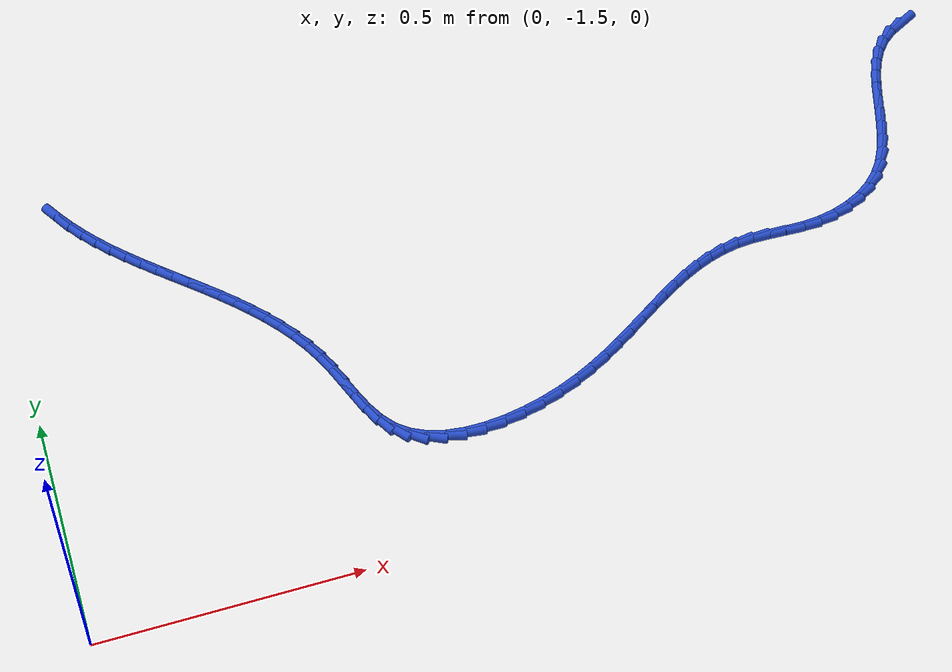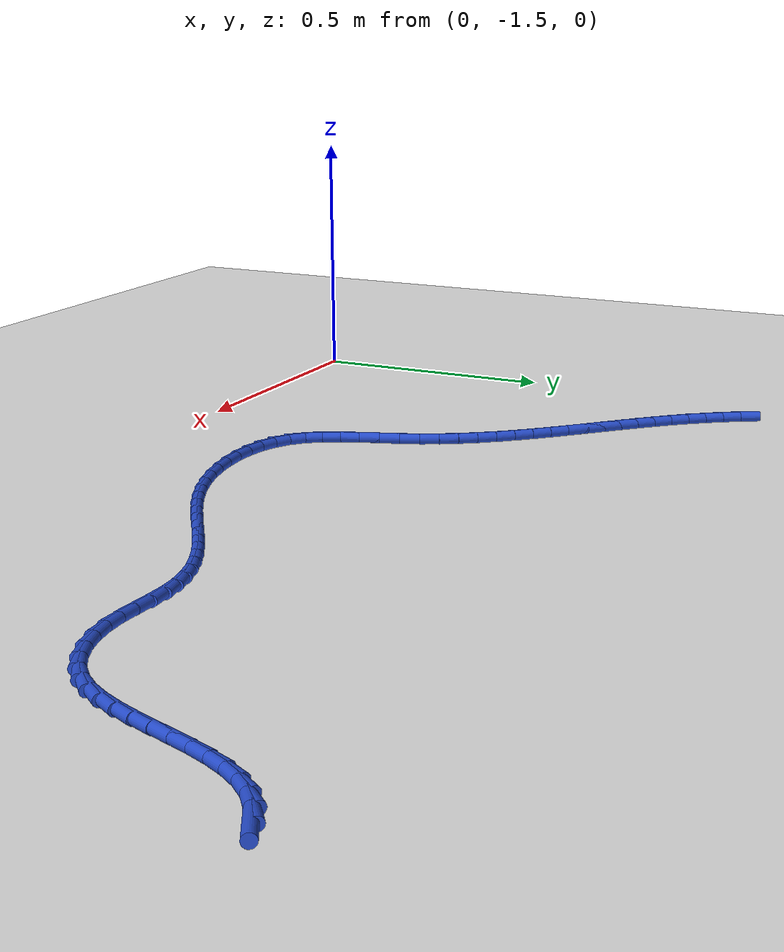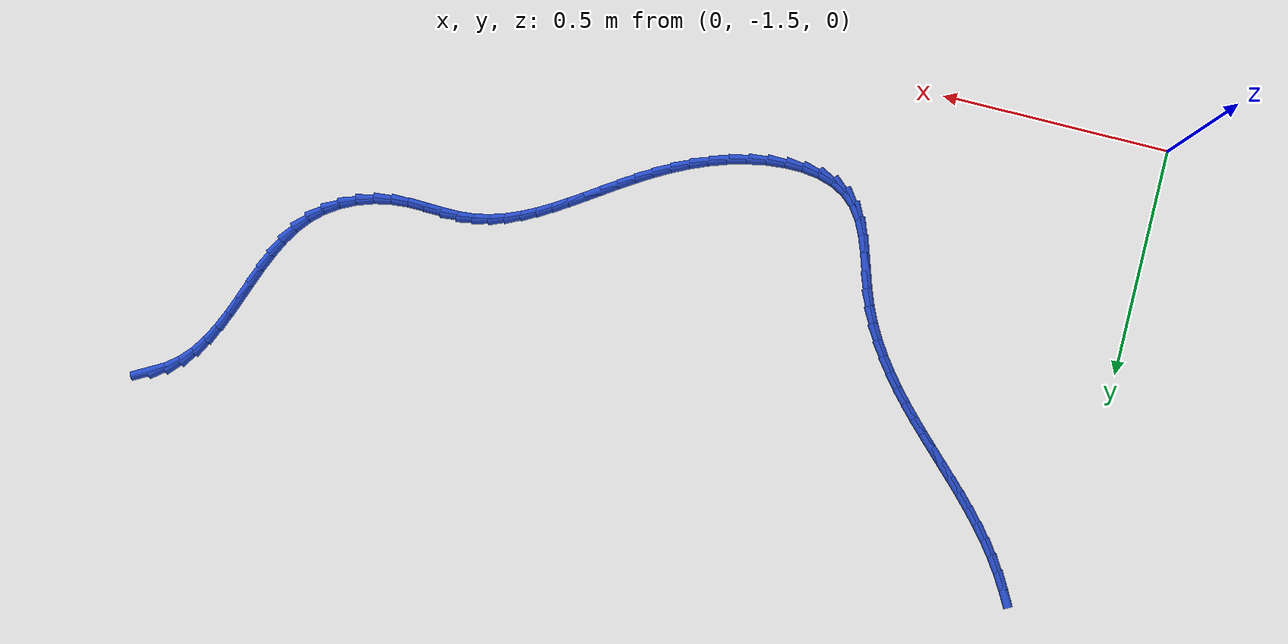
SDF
<sdf version="1.6">
 <world name="default">
  <model name="ground_plane">
   <static>1</static>
   <link name="link">
    <collision name="collision">
     <geometry><plane><normal>0 0 1</normal><size>100 100</size></plane></geometry>
     <surface><friction><ode><mu>100</mu><mu2>50</mu2></ode></friction></surface>
    </collision>
    <visual name="visual">
     <cast_shadows>0</cast_shadows>
     <geometry><plane><normal>0 0 1</normal><size>100 100</size></plane></geometry>
     <material>
      <script><uri>file://media/materials/scripts/gazebo.material</uri><name>Gazebo/WhiteGlow</name></script>
     </material>
    </visual>
   </link>
  </model>
  <model name="line">
   <link name="link_126">
    <pose>2.010808273549149 -0.49736119691932335 0.01 0 1.57 0.5098453382496158</pose>
    <collision name="collision">
     <geometry><cylinder><radius>0.01</radius><length>0.08</length></cylinder></geometry>
    </collision>
    <visual name="visual">
     <material>
      <script><name>Gazebo/Blue</name><uri>file://media/materials/scripts/gazebo.material</uri></script>
     </material>
     <geometry><cylinder><radius>0.01</radius><length>0.08</length></cylinder></geometry>
    </visual>
   </link>
   <link name="link_127">
    <pose>1.9790362676519435 -0.5151266944993184 0.01 0 1.57 0.6759234354549191</pose>
    <collision name="collision">
     <geometry><cylinder><radius>0.01</radius><length>0.08</length></cylinder></geometry>
    </collision>
    <visual name="visual">
     <material>
      <script><name>Gazebo/Blue</name><uri>file://media/materials/scripts/gazebo.material</uri></script>
     </material>
     <geometry><cylinder><radius>0.01</radius><length>0.08</length></cylinder></geometry>
    </visual>
   </link>
   <link name="link_128">
    <pose>1.9515621755220243 -0.5371592988805327 0.01 0 1.57 0.8494236552945096</pose>
    <collision name="collision">
     <geometry><cylinder><radius>0.01</radius><length>0.08</length></cylinder></geometry>
    </collision>
    <visual name="visual">
     <material>
      <script><name>Gazebo/Blue</name><uri>file://media/materials/scripts/gazebo.material</uri></script>
     </material>
     <geometry><cylinder><radius>0.01</radius><length>0.08</length></cylinder></geometry>
    </visual>
   </link>
   <link name="link_129">
    <pose>1.9284410155246516 -0.5634482984344303 0.01 0 1.57 0.9914595604209804</pose>
    <collision name="collision">
     <geometry><cylinder><radius>0.01</radius><length>0.08</length></cylinder></geometry>
    </collision>
    <visual name="visual">
     <material>
      <script><name>Gazebo/Blue</name><uri>file://media/materials/scripts/gazebo.material</uri></script>
     </material>
     <geometry><cylinder><radius>0.01</radius><length>0.08</length></cylinder></geometry>
    </visual>
   </link>
   <link name="link_130">
    <pose>1.9089196307428584 -0.5932874302804126 0.01 0 1.57 1.0979380804724523</pose>
    <collision name="collision">
     <geometry><cylinder><radius>0.01</radius><length>0.08</length></cylinder></geometry>
    </collision>
    <visual name="visual">
     <material>
      <script><name>Gazebo/Blue</name><uri>file://media/materials/scripts/gazebo.material</uri></script>
     </material>
     <geometry><cylinder><radius>0.01</radius><length>0.08</length></cylinder></geometry>
    </visual>
   </link>
   <link name="link_131">
    <pose>1.8922137765431302 -0.6259436760794493 0.01 0 1.57 1.1711239035269483</pose>
    <collision name="collision">
     <geometry><cylinder><radius>0.01</radius><length>0.08</length></cylinder></geometry>
    </collision>
    <visual name="visual">
     <material>
      <script><name>Gazebo/Blue</name><uri>file://media/materials/scripts/gazebo.material</uri></script>
     </material>
     <geometry><cylinder><radius>0.01</radius><length>0.08</length></cylinder></geometry>
    </visual>
   </link>
   <link name="link_132">
    <pose>1.8775392082919506 -0.6606840174925106 0.01 0 1.57 1.2146214087954534</pose>
    <collision name="collision">
     <geometry><cylinder><radius>0.01</radius><length>0.08</length></cylinder></geometry>
    </collision>
    <visual name="visual">
     <material>
      <script><name>Gazebo/Blue</name><uri>file://media/materials/scripts/gazebo.material</uri></script>
     </material>
     <geometry><cylinder><radius>0.01</radius><length>0.08</length></cylinder></geometry>
    </visual>
   </link>
   <link name="link_133">
    <pose>1.8641116813558054 -0.6967754361805641 0.01 0 1.57 1.2312991833323639</pose>
    <collision name="collision">
     <geometry><cylinder><radius>0.01</radius><length>0.08</length></cylinder></geometry>
    </collision>
    <visual name="visual">
     <material>
      <script><name>Gazebo/Blue</name><uri>file://media/materials/scripts/gazebo.material</uri></script>
     </material>
     <geometry><cylinder><radius>0.01</radius><length>0.08</length></cylinder></geometry>
    </visual>
   </link>
   <link name="link_134">
    <pose>1.8511469511011776 -0.7334849138045803 0.01 0 1.57 1.2225303055730667</pose>
    <collision name="collision">
     <geometry><cylinder><radius>0.01</radius><length>0.08</length></cylinder></geometry>
    </collision>
    <visual name="visual">
     <material>
      <script><name>Gazebo/Blue</name><uri>file://media/materials/scripts/gazebo.material</uri></script>
     </material>
     <geometry><cylinder><radius>0.01</radius><length>0.08</length></cylinder></geometry>
    </visual>
   </link>
   <link name="link_135">
    <pose>1.8378607728945535 -0.7700794320255284 0.01 0 1.57 1.1880430327184248</pose>
    <collision name="collision">
     <geometry><cylinder><radius>0.01</radius><length>0.08</length></cylinder></geometry>
    </collision>
    <visual name="visual">
     <material>
      <script><name>Gazebo/Blue</name><uri>file://media/materials/scripts/gazebo.material</uri></script>
     </material>
     <geometry><cylinder><radius>0.01</radius><length>0.08</length></cylinder></geometry>
    </visual>
   </link>
   <link name="link_136">
    <pose>1.8234689021024162 -0.8058259725043779 0.01 0 1.57 1.1260788936903652</pose>
    <collision name="collision">
     <geometry><cylinder><radius>0.01</radius><length>0.08</length></cylinder></geometry>
    </collision>
    <visual name="visual">
     <material>
      <script><name>Gazebo/Blue</name><uri>file://media/materials/scripts/gazebo.material</uri></script>
     </material>
     <geometry><cylinder><radius>0.01</radius><length>0.08</length></cylinder></geometry>
    </visual>
   </link>
   <link name="link_137">
    <pose>1.8071870940912516 -0.8399915169020983 0.01 0 1.57 1.0339610258379728</pose>
    <collision name="collision">
     <geometry><cylinder><radius>0.01</radius><length>0.08</length></cylinder></geometry>
    </collision>
    <visual name="visual">
     <material>
      <script><name>Gazebo/Blue</name><uri>file://media/materials/scripts/gazebo.material</uri></script>
     </material>
     <geometry><cylinder><radius>0.01</radius><length>0.08</length></cylinder></geometry>
    </visual>
   </link>
   <link name="link_138">
    <pose>1.7882311042275427 -0.8718430468796596 0.01 0 1.57 0.909517020371766</pose>
    <collision name="collision">
     <geometry><cylinder><radius>0.01</radius><length>0.08</length></cylinder></geometry>
    </collision>
    <visual name="visual">
     <material>
      <script><name>Gazebo/Blue</name><uri>file://media/materials/scripts/gazebo.material</uri></script>
     </material>
     <geometry><cylinder><radius>0.01</radius><length>0.08</length></cylinder></geometry>
    </visual>
   </link>
   <link name="link_139">
    <pose>1.7658166878777752 -0.9006475440980298 0.01 0 1.57 0.755629779031699</pose>
    <collision name="collision">
     <geometry><cylinder><radius>0.01</radius><length>0.08</length></cylinder></geometry>
    </collision>
    <visual name="visual">
     <material>
      <script><name>Gazebo/Blue</name><uri>file://media/materials/scripts/gazebo.material</uri></script>
     </material>
     <geometry><cylinder><radius>0.01</radius><length>0.08</length></cylinder></geometry>
    </visual>
   </link>
   <link name="link_140">
    <pose>1.7392290340327126 -0.9256975733266414 0.01 0 1.57 0.6006069183061264</pose>
    <collision name="collision">
     <geometry><cylinder><radius>0.01</radius><length>0.08</length></cylinder></geometry>
    </collision>
    <visual name="visual">
     <material>
      <script><name>Gazebo/Blue</name><uri>file://media/materials/scripts/gazebo.material</uri></script>
     </material>
     <geometry><cylinder><radius>0.01</radius><length>0.08</length></cylinder></geometry>
    </visual>
   </link>
   <link name="link_141">
    <pose>1.70867752039878 -0.9466262205218603 0.01 0 1.57 0.46026364169774153</pose>
    <collision name="collision">
     <geometry><cylinder><radius>0.01</radius><length>0.08</length></cylinder></geometry>
    </collision>
    <visual name="visual">
     <material>
      <script><name>Gazebo/Blue</name><uri>file://media/materials/scripts/gazebo.material</uri></script>
     </material>
     <geometry><cylinder><radius>0.01</radius><length>0.08</length></cylinder></geometry>
    </visual>
   </link>
   <link name="link_142">
    <pose>1.675028499632957 -0.9633086368007235 0.01 0 1.57 0.3307848523578061</pose>
    <collision name="collision">
     <geometry><cylinder><radius>0.01</radius><length>0.08</length></cylinder></geometry>
    </collision>
    <visual name="visual">
     <material>
      <script><name>Gazebo/Blue</name><uri>file://media/materials/scripts/gazebo.material</uri></script>
     </material>
     <geometry><cylinder><radius>0.01</radius><length>0.08</length></cylinder></geometry>
    </visual>
   </link>
   <link name="link_143">
    <pose>1.6391623564368465 -0.9756251434456363 0.01 0 1.57 0.20746361084411466</pose>
    <collision name="collision">
     <geometry><cylinder><radius>0.01</radius><length>0.08</length></cylinder></geometry>
    </collision>
    <visual name="visual">
     <material>
      <script><name>Gazebo/Blue</name><uri>file://media/materials/scripts/gazebo.material</uri></script>
     </material>
     <geometry><cylinder><radius>0.01</radius><length>0.08</length></cylinder></geometry>
    </visual>
   </link>
   <link name="link_144">
    <pose>1.6019594755120523 -0.9834560617390034 0.01 0 1.57 0.08725306289106162</pose>
    <collision name="collision">
     <geometry><cylinder><radius>0.01</radius><length>0.08</length></cylinder></geometry>
    </collision>
    <visual name="visual">
     <material>
      <script><name>Gazebo/Blue</name><uri>file://media/materials/scripts/gazebo.material</uri></script>
     </material>
     <geometry><cylinder><radius>0.01</radius><length>0.08</length></cylinder></geometry>
    </visual>
   </link>
   <link name="link_145">
    <pose>1.564286255844412 -0.986751532704921 0.01 0 1.57 -0.0013704024891481096</pose>
    <collision name="collision">
     <geometry><cylinder><radius>0.01</radius><length>0.08</length></cylinder></geometry>
    </collision>
    <visual name="visual">
     <material>
      <script><name>Gazebo/Blue</name><uri>file://media/materials/scripts/gazebo.material</uri></script>
     </material>
     <geometry><cylinder><radius>0.01</radius><length>0.08</length></cylinder></geometry>
    </visual>
   </link>
   <link name="link_146">
    <pose>1.5267610281973858 -0.9867001080073557 0.01 0 1.57 -0.031000390063755212</pose>
    <collision name="collision">
     <geometry><cylinder><radius>0.01</radius><length>0.08</length></cylinder></geometry>
    </collision>
    <visual name="visual">
     <material>
      <script><name>Gazebo/Blue</name><uri>file://media/materials/scripts/gazebo.material</uri></script>
     </material>
     <geometry><cylinder><radius>0.01</radius><length>0.08</length></cylinder></geometry>
    </visual>
   </link>
   <link name="link_147">
    <pose>1.489789140156891 -0.985553597758482 0.01 0 1.57 0.0012423069288639897</pose>
    <collision name="collision">
     <geometry><cylinder><radius>0.01</radius><length>0.08</length></cylinder></geometry>
    </collision>
    <visual name="visual">
     <material>
      <script><name>Gazebo/Blue</name><uri>file://media/materials/scripts/gazebo.material</uri></script>
     </material>
     <geometry><cylinder><radius>0.01</radius><length>0.08</length></cylinder></geometry>
    </visual>
   </link>
   <link name="link_148">
    <pose>1.453769021791663 -0.9855983458241259 0.01 0 1.57 0.09603207637257882</pose>
    <collision name="collision">
     <geometry><cylinder><radius>0.01</radius><length>0.08</length></cylinder></geometry>
    </collision>
    <visual name="visual">
     <material>
      <script><name>Gazebo/Blue</name><uri>file://media/materials/scripts/gazebo.material</uri></script>
     </material>
     <geometry><cylinder><radius>0.01</radius><length>0.08</length></cylinder></geometry>
    </visual>
   </link>
   <link name="link_149">
    <pose>1.419057481624789 -0.9889420521567245 0.01 0 1.57 0.2093708653114862</pose>
    <collision name="collision">
     <geometry><cylinder><radius>0.01</radius><length>0.08</length></cylinder></geometry>
    </collision>
    <visual name="visual">
     <material>
      <script><name>Gazebo/Blue</name><uri>file://media/materials/scripts/gazebo.material</uri></script>
     </material>
     <geometry><cylinder><radius>0.01</radius><length>0.08</length></cylinder></geometry>
    </visual>
   </link>
   <link name="link_150">
    <pose>1.3856275951468104 -0.9960453954469707 0.01 0 1.57 0.3117350450690636</pose>
    <collision name="collision">
     <geometry><cylinder><radius>0.01</radius><length>0.08</length></cylinder></geometry>
    </collision>
    <visual name="visual">
     <material>
      <script><name>Gazebo/Blue</name><uri>file://media/materials/scripts/gazebo.material</uri></script>
     </material>
     <geometry><cylinder><radius>0.01</radius><length>0.08</length></cylinder></geometry>
    </visual>
   </link>
   <link name="link_151">
    <pose>1.3532453697762092 -1.0064802971288542 0.01 0 1.57 0.3995136931026066</pose>
    <collision name="collision">
     <geometry><cylinder><radius>0.01</radius><length>0.08</length></cylinder></geometry>
    </collision>
    <visual name="visual">
     <material>
      <script><name>Gazebo/Blue</name><uri>file://media/materials/scripts/gazebo.material</uri></script>
     </material>
     <geometry><cylinder><radius>0.01</radius><length>0.08</length></cylinder></geometry>
    </visual>
   </link>
   <link name="link_152">
    <pose>1.321674797313748 -1.0198100273997983 0.01 0 1.57 0.4711140124190665</pose>
    <collision name="collision">
     <geometry><cylinder><radius>0.01</radius><length>0.08</length></cylinder></geometry>
    </collision>
    <visual name="visual">
     <material>
      <script><name>Gazebo/Blue</name><uri>file://media/materials/scripts/gazebo.material</uri></script>
     </material>
     <geometry><cylinder><radius>0.01</radius><length>0.08</length></cylinder></geometry>
    </visual>
   </link>
   <link name="link_153">
    <pose>1.2906798695601869 -1.0355978564572275 0.01 0 1.57 0.5262945262759875</pose>
    <collision name="collision">
     <geometry><cylinder><radius>0.01</radius><length>0.08</length></cylinder></geometry>
    </collision>
    <visual name="visual">
     <material>
      <script><name>Gazebo/Blue</name><uri>file://media/materials/scripts/gazebo.material</uri></script>
     </material>
     <geometry><cylinder><radius>0.01</radius><length>0.08</length></cylinder></geometry>
    </visual>
   </link>
   <link name="link_154">
    <pose>1.2600245783162873 -1.0534070544985652 0.01 0 1.57 0.5656071263005271</pose>
    <collision name="collision">
     <geometry><cylinder><radius>0.01</radius><length>0.08</length></cylinder></geometry>
    </collision>
    <visual name="visual">
     <material>
      <script><name>Gazebo/Blue</name><uri>file://media/materials/scripts/gazebo.material</uri></script>
     </material>
     <geometry><cylinder><radius>0.01</radius><length>0.08</length></cylinder></geometry>
    </visual>
   </link>
   <link name="link_155">
    <pose>1.2294729153828103 -1.0728008917212353 0.01 0 1.57 0.5899341214739692</pose>
    <collision name="collision">
     <geometry><cylinder><radius>0.01</radius><length>0.08</length></cylinder></geometry>
    </collision>
    <visual name="visual">
     <material>
      <script><name>Gazebo/Blue</name><uri>file://media/materials/scripts/gazebo.material</uri></script>
     </material>
     <geometry><cylinder><radius>0.01</radius><length>0.08</length></cylinder></geometry>
    </visual>
   </link>
   <link name="link_156">
    <pose>1.1987888725605165 -1.0933426383226617 0.01 0 1.57 0.6001933483396944</pose>
    <collision name="collision">
     <geometry><cylinder><radius>0.01</radius><length>0.08</length></cylinder></geometry>
    </collision>
    <visual name="visual">
     <material>
      <script><name>Gazebo/Blue</name><uri>file://media/materials/scripts/gazebo.material</uri></script>
     </material>
     <geometry><cylinder><radius>0.01</radius><length>0.08</length></cylinder></geometry>
    </visual>
   </link>
   <link name="link_157">
    <pose>1.167736441650167 -1.1145955645002694 0.01 0 1.57 0.5971925010519228</pose>
    <collision name="collision">
     <geometry><cylinder><radius>0.01</radius><length>0.08</length></cylinder></geometry>
    </collision>
    <visual name="visual">
     <material>
      <script><name>Gazebo/Blue</name><uri>file://media/materials/scripts/gazebo.material</uri></script>
     </material>
     <geometry><cylinder><radius>0.01</radius><length>0.08</length></cylinder></geometry>
    </visual>
   </link>
   <link name="link_158">
    <pose>1.1360796144525243 -1.1361229404514808 0.01 0 1.57 0.5815901718151624</pose>
    <collision name="collision">
     <geometry><cylinder><radius>0.01</radius><length>0.08</length></cylinder></geometry>
    </collision>
    <visual name="visual">
     <material>
      <script><name>Gazebo/Blue</name><uri>file://media/materials/scripts/gazebo.material</uri></script>
     </material>
     <geometry><cylinder><radius>0.01</radius><length>0.08</length></cylinder></geometry>
    </visual>
   </link>
   <link name="link_159">
    <pose>1.103582382768348 -1.15748803637372 0.01 0 1.57 0.5539284533860074</pose>
    <collision name="collision">
     <geometry><cylinder><radius>0.01</radius><length>0.08</length></cylinder></geometry>
    </collision>
    <visual name="visual">
     <material>
      <script><name>Gazebo/Blue</name><uri>file://media/materials/scripts/gazebo.material</uri></script>
     </material>
     <geometry><cylinder><radius>0.01</radius><length>0.08</length></cylinder></geometry>
    </visual>
   </link>
   <link name="link_160">
    <pose>1.0700087383984 -1.1782541224644114 0.01 0 1.57 0.5147149139962995</pose>
    <collision name="collision">
     <geometry><cylinder><radius>0.01</radius><length>0.08</length></cylinder></geometry>
    </collision>
    <visual name="visual">
     <material>
      <script><name>Gazebo/Blue</name><uri>file://media/materials/scripts/gazebo.material</uri></script>
     </material>
     <geometry><cylinder><radius>0.01</radius><length>0.08</length></cylinder></geometry>
    </visual>
   </link>
   <link name="link_161">
    <pose>1.0351226731434413 -1.1979844689209787 0.01 0 1.57 0.4645393293333776</pose>
    <collision name="collision">
     <geometry><cylinder><radius>0.01</radius><length>0.08</length></cylinder></geometry>
    </collision>
    <visual name="visual">
     <material>
      <script><name>Gazebo/Blue</name><uri>file://media/materials/scripts/gazebo.material</uri></script>
     </material>
     <geometry><cylinder><radius>0.01</radius><length>0.08</length></cylinder></geometry>
    </visual>
   </link>
   <link name="link_162">
    <pose>0.9986881788042324 -1.2162423459408456 0.01 0 1.57 0.40420935852693185</pose>
    <collision name="collision">
     <geometry><cylinder><radius>0.01</radius><length>0.08</length></cylinder></geometry>
    </collision>
    <visual name="visual">
     <material>
      <script><name>Gazebo/Blue</name><uri>file://media/materials/scripts/gazebo.material</uri></script>
     </material>
     <geometry><cylinder><radius>0.01</radius><length>0.08</length></cylinder></geometry>
    </visual>
   </link>
   <link name="link_163">
    <pose>0.960469250179667 -1.2325910236353161 0.01 0 1.57 0.3362927207485862</pose>
    <collision name="collision">
     <geometry><cylinder><radius>0.01</radius><length>0.08</length></cylinder></geometry>
    </collision>
    <visual name="visual">
     <material>
      <script><name>Gazebo/Blue</name><uri>file://media/materials/scripts/gazebo.material</uri></script>
     </material>
     <geometry><cylinder><radius>0.01</radius><length>0.08</length></cylinder></geometry>
    </visual>
   </link>
   <link name="link_164">
    <pose>0.9204286492951801 -1.2465880625976486 0.01 0 1.57 0.265248544410154</pose>
    <collision name="collision">
     <geometry><cylinder><radius>0.01</radius><length>0.08</length></cylinder></geometry>
    </collision>
    <visual name="visual">
     <material>
      <script><name>Gazebo/Blue</name><uri>file://media/materials/scripts/gazebo.material</uri></script>
     </material>
     <geometry><cylinder><radius>0.01</radius><length>0.08</length></cylinder></geometry>
    </visual>
   </link>
   <link name="link_165">
    <pose>0.8792660623663254 -1.257769855535257 0.01 0 1.57 0.1884458101670473</pose>
    <collision name="collision">
     <geometry><cylinder><radius>0.01</radius><length>0.08</length></cylinder></geometry>
    </collision>
    <visual name="visual">
     <material>
      <script><name>Gazebo/Blue</name><uri>file://media/materials/scripts/gazebo.material</uri></script>
     </material>
     <geometry><cylinder><radius>0.01</radius><length>0.08</length></cylinder></geometry>
    </visual>
   </link>
   <link name="link_166">
    <pose>0.8378519191149879 -1.2656678906089276 0.01 0 1.57 0.10127599476704445</pose>
    <collision name="collision">
     <geometry><cylinder><radius>0.01</radius><length>0.08</length></cylinder></geometry>
    </collision>
    <visual name="visual">
     <material>
      <script><name>Gazebo/Blue</name><uri>file://media/materials/scripts/gazebo.material</uri></script>
     </material>
     <geometry><cylinder><radius>0.01</radius><length>0.08</length></cylinder></geometry>
    </visual>
   </link>
   <link name="link_167">
    <pose>0.7970566492630545 -1.269813655979448 0.01 0 1.57 -0.0019085163653852339</pose>
    <collision name="collision">
     <geometry><cylinder><radius>0.01</radius><length>0.08</length></cylinder></geometry>
    </collision>
    <visual name="visual">
     <material>
      <script><name>Gazebo/Blue</name><uri>file://media/materials/scripts/gazebo.material</uri></script>
     </material>
     <geometry><cylinder><radius>0.01</radius><length>0.08</length></cylinder></geometry>
    </visual>
   </link>
   <link name="link_168">
    <pose>0.7577506825324113 -1.2697386398076047 0.01 0 1.57 -0.12824478373203171</pose>
    <collision name="collision">
     <geometry><cylinder><radius>0.01</radius><length>0.08</length></cylinder></geometry>
    </collision>
    <visual name="visual">
     <material>
      <script><name>Gazebo/Blue</name><uri>file://media/materials/scripts/gazebo.material</uri></script>
     </material>
     <geometry><cylinder><radius>0.01</radius><length>0.08</length></cylinder></geometry>
    </visual>
   </link>
   <link name="link_169">
    <pose>0.7208044486449445 -1.2649743302541847 0.01 0 1.57 -0.28620493728173996</pose>
    <collision name="collision">
     <geometry><cylinder><radius>0.01</radius><length>0.08</length></cylinder></geometry>
    </collision>
    <visual name="visual">
     <material>
      <script><name>Gazebo/Blue</name><uri>file://media/materials/scripts/gazebo.material</uri></script>
     </material>
     <geometry><cylinder><radius>0.01</radius><length>0.08</length></cylinder></geometry>
    </visual>
   </link>
   <link name="link_170">
    <pose>0.68708837732254 -1.2550522154799746 0.01 0 1.57 -0.48345508397812814</pose>
    <collision name="collision">
     <geometry><cylinder><radius>0.01</radius><length>0.08</length></cylinder></geometry>
    </collision>
    <visual name="visual">
     <material>
      <script><name>Gazebo/Blue</name><uri>file://media/materials/scripts/gazebo.material</uri></script>
     </material>
     <geometry><cylinder><radius>0.01</radius><length>0.08</length></cylinder></geometry>
    </visual>
   </link>
   <link name="link_171">
    <pose>0.6574728982870854 -1.2395037836457614 0.01 0 1.57 -0.7203525211491791</pose>
    <collision name="collision">
     <geometry><cylinder><radius>0.01</radius><length>0.08</length></cylinder></geometry>
    </collision>
    <visual name="visual">
     <material>
      <script><name>Gazebo/Blue</name><uri>file://media/materials/scripts/gazebo.material</uri></script>
     </material>
     <geometry><cylinder><radius>0.01</radius><length>0.08</length></cylinder></geometry>
    </visual>
   </link>
   <link name="link_172">
    <pose>0.6328209063350186 -1.2178669326980478 0.01 0 1.57 -0.953489063298329</pose>
    <collision name="collision">
     <geometry><cylinder><radius>0.01</radius><length>0.08</length></cylinder></geometry>
    </collision>
    <visual name="visual">
     <material>
      <script><name>Gazebo/Blue</name><uri>file://media/materials/scripts/gazebo.material</uri></script>
     </material>
     <geometry><cylinder><radius>0.01</radius><length>0.08</length></cylinder></geometry>
    </visual>
   </link>
   <link name="link_173">
    <pose>0.613257546627796 -1.19030714702787 0.01 0 1.57 -1.1168482179770685</pose>
    <collision name="collision">
     <geometry><cylinder><radius>0.01</radius><length>0.08</length></cylinder></geometry>
    </collision>
    <visual name="visual">
     <material>
      <script><name>Gazebo/Blue</name><uri>file://media/materials/scripts/gazebo.material</uri></script>
     </material>
     <geometry><cylinder><radius>0.01</radius><length>0.08</length></cylinder></geometry>
    </visual>
   </link>
   <link name="link_174">
    <pose>0.5975603159175228 -1.1581363241637366 0.01 0 1.57 -1.2134712573814794</pose>
    <collision name="collision">
     <geometry><cylinder><radius>0.01</radius><length>0.08</length></cylinder></geometry>
    </collision>
    <visual name="visual">
     <material>
      <script><name>Gazebo/Blue</name><uri>file://media/materials/scripts/gazebo.material</uri></script>
     </material>
     <geometry><cylinder><radius>0.01</radius><length>0.08</length></cylinder></geometry>
    </visual>
   </link>
   <link name="link_175">
    <pose>0.5843631344876083 -1.1227884987945627 0.01 0 1.57 -1.2563521917430918</pose>
    <collision name="collision">
     <geometry><cylinder><radius>0.01</radius><length>0.08</length></cylinder></geometry>
    </collision>
    <visual name="visual">
     <material>
      <script><name>Gazebo/Blue</name><uri>file://media/materials/scripts/gazebo.material</uri></script>
     </material>
     <geometry><cylinder><radius>0.01</radius><length>0.08</length></cylinder></geometry>
    </visual>
   </link>
   <link name="link_176">
    <pose>0.572299922621461 -1.0856977056092627 0.01 0 1.57 -1.2531725196456678</pose>
    <collision name="collision">
     <geometry><cylinder><radius>0.01</radius><length>0.08</length></cylinder></geometry>
    </collision>
    <visual name="visual">
     <material>
      <script><name>Gazebo/Blue</name><uri>file://media/materials/scripts/gazebo.material</uri></script>
     </material>
     <geometry><cylinder><radius>0.01</radius><length>0.08</length></cylinder></geometry>
    </visual>
   </link>
   <link name="link_177">
    <pose>0.5600046006024902 -1.0482979792967537 0.01 0 1.57 -1.2055081833388224</pose>
    <collision name="collision">
     <geometry><cylinder><radius>0.01</radius><length>0.08</length></cylinder></geometry>
    </collision>
    <visual name="visual">
     <material>
      <script><name>Gazebo/Blue</name><uri>file://media/materials/scripts/gazebo.material</uri></script>
     </material>
     <geometry><cylinder><radius>0.01</radius><length>0.08</length></cylinder></geometry>
    </visual>
   </link>
   <link name="link_178">
    <pose>0.5461256351394783 -1.0120085779261354 0.01 0 1.57 -1.1315521874556724</pose>
    <collision name="collision">
     <geometry><cylinder><radius>0.01</radius><length>0.08</length></cylinder></geometry>
    </collision>
    <visual name="visual">
     <material>
      <script><name>Gazebo/Blue</name><uri>file://media/materials/scripts/gazebo.material</uri></script>
     </material>
     <geometry><cylinder><radius>0.01</radius><length>0.08</length></cylinder></geometry>
    </visual>
   </link>
   <link name="link_179">
    <pose>0.5299558061731358 -0.977594250199022 0.01 0 1.57 -1.0606647960007771</pose>
    <collision name="collision">
     <geometry><cylinder><radius>0.01</radius><length>0.08</length></cylinder></geometry>
    </collision>
    <visual name="visual">
     <material>
      <script><name>Gazebo/Blue</name><uri>file://media/materials/scripts/gazebo.material</uri></script>
     </material>
     <geometry><cylinder><radius>0.01</radius><length>0.08</length></cylinder></geometry>
    </visual>
   </link>
   <link name="link_180">
    <pose>0.5116735676667779 -0.94492005516981 0.01 0 1.57 -0.9963541997400125</pose>
    <collision name="collision">
     <geometry><cylinder><radius>0.01</radius><length>0.08</length></cylinder></geometry>
    </collision>
    <visual name="visual">
     <material>
      <script><name>Gazebo/Blue</name><uri>file://media/materials/scripts/gazebo.material</uri></script>
     </material>
     <geometry><cylinder><radius>0.01</radius><length>0.08</length></cylinder></geometry>
    </visual>
   </link>
   <link name="link_181">
    <pose>0.49152172919325593 -0.9137856778679592 0.01 0 1.57 -0.9395976806816659</pose>
    <collision name="collision">
     <geometry><cylinder><radius>0.01</radius><length>0.08</length></cylinder></geometry>
    </collision>
    <visual name="visual">
     <material>
      <script><name>Gazebo/Blue</name><uri>file://media/materials/scripts/gazebo.material</uri></script>
     </material>
     <geometry><cylinder><radius>0.01</radius><length>0.08</length></cylinder></geometry>
    </visual>
   </link>
   <link name="link_182">
    <pose>0.46974310032542116 -0.8839908033229282 0.01 0 1.57 -0.8910102567768887</pose>
    <collision name="collision">
     <geometry><cylinder><radius>0.01</radius><length>0.08</length></cylinder></geometry>
    </collision>
    <visual name="visual">
     <material>
      <script><name>Gazebo/Blue</name><uri>file://media/materials/scripts/gazebo.material</uri></script>
     </material>
     <geometry><cylinder><radius>0.01</radius><length>0.08</length></cylinder></geometry>
    </visual>
   </link>
   <link name="link_183">
    <pose>0.446580490636124 -0.855335116564176 0.01 0 1.57 -0.8509135309705621</pose>
    <collision name="collision">
     <geometry><cylinder><radius>0.01</radius><length>0.08</length></cylinder></geometry>
    </collision>
    <visual name="visual">
     <material>
      <script><name>Gazebo/Blue</name><uri>file://media/materials/scripts/gazebo.material</uri></script>
     </material>
     <geometry><cylinder><radius>0.01</radius><length>0.08</length></cylinder></geometry>
    </visual>
   </link>
   <link name="link_184">
    <pose>0.4222767096982164 -0.8276183026211623 0.01 0 1.57 -0.8194229711847913</pose>
    <collision name="collision">
     <geometry><cylinder><radius>0.01</radius><length>0.08</length></cylinder></geometry>
    </collision>
    <visual name="visual">
     <material>
      <script><name>Gazebo/Blue</name><uri>file://media/materials/scripts/gazebo.material</uri></script>
     </material>
     <geometry><cylinder><radius>0.01</radius><length>0.08</length></cylinder></geometry>
    </visual>
   </link>
   <link name="link_185">
    <pose>0.39707456708454925 -0.8006400465233463 0.01 0 1.57 -0.7965323883146614</pose>
    <collision name="collision">
     <geometry><cylinder><radius>0.01</radius><length>0.08</length></cylinder></geometry>
    </collision>
    <visual name="visual">
     <material>
      <script><name>Gazebo/Blue</name><uri>file://media/materials/scripts/gazebo.material</uri></script>
     </material>
     <geometry><cylinder><radius>0.01</radius><length>0.08</length></cylinder></geometry>
    </visual>
   </link>
   <link name="link_186">
    <pose>0.3712168723679738 -0.7742000333001873 0.01 0 1.57 -0.7821836658044018</pose>
    <collision name="collision">
     <geometry><cylinder><radius>0.01</radius><length>0.08</length></cylinder></geometry>
    </collision>
    <visual name="visual">
     <material>
      <script><name>Gazebo/Blue</name><uri>file://media/materials/scripts/gazebo.material</uri></script>
     </material>
     <geometry><cylinder><radius>0.01</radius><length>0.08</length></cylinder></geometry>
    </visual>
   </link>
   <link name="link_187">
    <pose>0.3449464351213408 -0.7480979479811437 0.01 0 1.57 -0.776317232830403</pose>
    <collision name="collision">
     <geometry><cylinder><radius>0.01</radius><length>0.08</length></cylinder></geometry>
    </collision>
    <visual name="visual">
     <material>
      <script><name>Gazebo/Blue</name><uri>file://media/materials/scripts/gazebo.material</uri></script>
     </material>
     <geometry><cylinder><radius>0.01</radius><length>0.08</length></cylinder></geometry>
    </visual>
   </link>
   <link name="link_188">
    <pose>0.3185060649175018 -0.7221334755956752 0.01 0 1.57 -0.778902953237701</pose>
    <collision name="collision">
     <geometry><cylinder><radius>0.01</radius><length>0.08</length></cylinder></geometry>
    </collision>
    <visual name="visual">
     <material>
      <script><name>Gazebo/Blue</name><uri>file://media/materials/scripts/gazebo.material</uri></script>
     </material>
     <geometry><cylinder><radius>0.01</radius><length>0.08</length></cylinder></geometry>
    </visual>
   </link>
   <link name="link_189">
    <pose>0.29213857132930704 -0.6961063011732403 0.01 0 1.57 -0.7899524866444566</pose>
    <collision name="collision">
     <geometry><cylinder><radius>0.01</radius><length>0.08</length></cylinder></geometry>
    </collision>
    <visual name="visual">
     <material>
      <script><name>Gazebo/Blue</name><uri>file://media/materials/scripts/gazebo.material</uri></script>
     </material>
     <geometry><cylinder><radius>0.01</radius><length>0.08</length></cylinder></geometry>
    </visual>
   </link>
   <link name="link_190">
    <pose>0.26608676392960884 -0.6698161097432991 0.01 0 1.57 -0.809513833953516</pose>
    <collision name="collision">
     <geometry><cylinder><radius>0.01</radius><length>0.08</length></cylinder></geometry>
    </collision>
    <visual name="visual">
     <material>
      <script><name>Gazebo/Blue</name><uri>file://media/materials/scripts/gazebo.material</uri></script>
     </material>
     <geometry><cylinder><radius>0.01</radius><length>0.08</length></cylinder></geometry>
    </visual>
   </link>
   <link name="link_191">
    <pose>0.240593452291258 -0.6430625863353108 0.01 0 1.57 -0.8376477642788795</pose>
    <collision name="collision">
     <geometry><cylinder><radius>0.01</radius><length>0.08</length></cylinder></geometry>
    </collision>
    <visual name="visual">
     <material>
      <script><name>Gazebo/Blue</name><uri>file://media/materials/scripts/gazebo.material</uri></script>
     </material>
     <geometry><cylinder><radius>0.01</radius><length>0.08</length></cylinder></geometry>
    </visual>
   </link>
   <link name="link_192">
    <pose>0.21590144598710542 -0.615645415978734 0.01 0 1.57 -0.8743850994392031</pose>
    <collision name="collision">
     <geometry><cylinder><radius>0.01</radius><length>0.08</length></cylinder></geometry>
    </collision>
    <visual name="visual">
     <material>
      <script><name>Gazebo/Blue</name><uri>file://media/materials/scripts/gazebo.material</uri></script>
     </material>
     <geometry><cylinder><radius>0.01</radius><length>0.08</length></cylinder></geometry>
    </visual>
   </link>
   <link name="link_193">
    <pose>0.1922535545900023 -0.5873642837030278 0.01 0 1.57 -0.9196541603534886</pose>
    <collision name="collision">
     <geometry><cylinder><radius>0.01</radius><length>0.08</length></cylinder></geometry>
    </collision>
    <visual name="visual">
     <material>
      <script><name>Gazebo/Blue</name><uri>file://media/materials/scripts/gazebo.material</uri></script>
     </material>
     <geometry><cylinder><radius>0.01</radius><length>0.08</length></cylinder></geometry>
    </visual>
   </link>
   <link name="link_194">
    <pose>0.1698923522933903 -0.5580191897601235 0.01 0 1.57 -0.9703353700490815</pose>
    <collision name="collision">
     <geometry><cylinder><radius>0.01</radius><length>0.08</length></cylinder></geometry>
    </collision>
    <visual name="visual">
     <material>
      <script><name>Gazebo/Blue</name><uri>file://media/materials/scripts/gazebo.material</uri></script>
     </material>
     <geometry><cylinder><radius>0.01</radius><length>0.08</length></cylinder></geometry>
    </visual>
   </link>
   <link name="link_195">
    <pose>0.14899283120454204 -0.5275006410113174 0.01 0 1.57 -1.019472494425196</pose>
    <collision name="collision">
     <geometry><cylinder><radius>0.01</radius><length>0.08</length></cylinder></geometry>
    </collision>
    <visual name="visual">
     <material>
      <script><name>Gazebo/Blue</name><uri>file://media/materials/scripts/gazebo.material</uri></script>
     </material>
     <geometry><cylinder><radius>0.01</radius><length>0.08</length></cylinder></geometry>
    </visual>
   </link>
   <link name="link_196">
    <pose>0.1295694213565647 -0.4959141706621469 0.01 0 1.57 -1.0662664598196554</pose>
    <collision name="collision">
     <geometry><cylinder><radius>0.01</radius><length>0.08</length></cylinder></geometry>
    </collision>
    <visual name="visual">
     <material>
      <script><name>Gazebo/Blue</name><uri>file://media/materials/scripts/gazebo.material</uri></script>
     </material>
     <geometry><cylinder><radius>0.01</radius><length>0.08</length></cylinder></geometry>
    </visual>
   </link>
  </model>
 </world>
</sdf>
